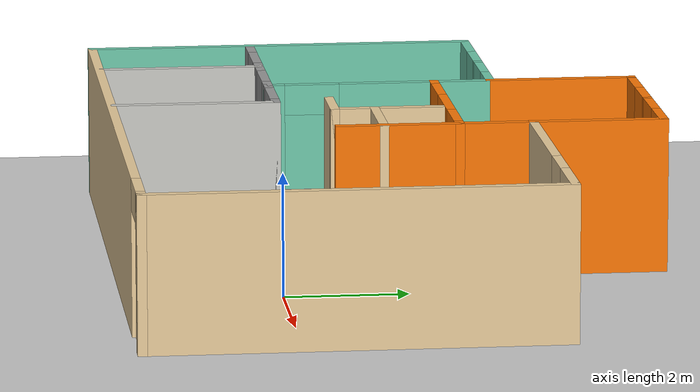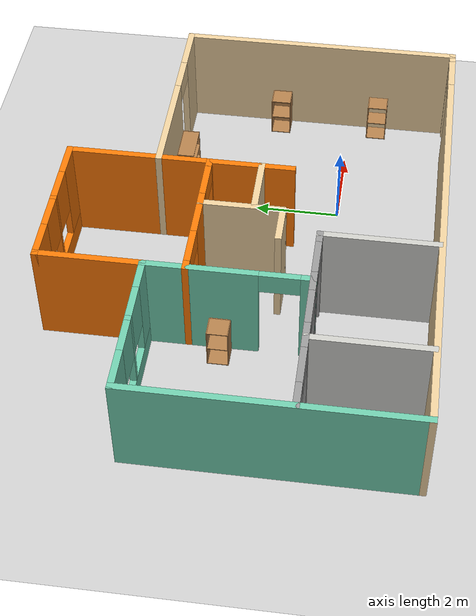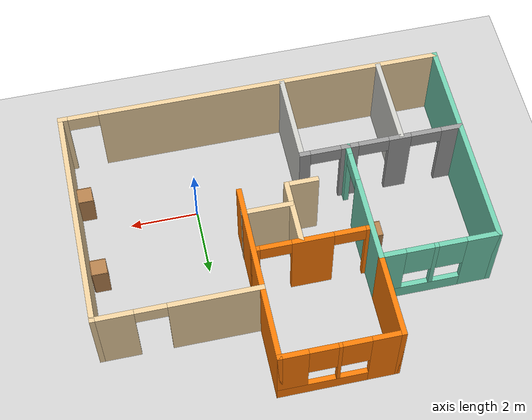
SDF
<sdf version="1.6">
 <world name="default">
  <light name="sun" type="directional">
   <pose>0 0 10 0 -0 0</pose>
   <diffuse>0.8 0.8 0.8 1</diffuse>
   <specular>0.2 0.2 0.2 1</specular>
   <attenuation>
    <range>1000</range>
    <constant>0.9</constant>
    <linear>0.01</linear>
    <quadratic>0.001</quadratic>
   </attenuation>
   <direction>-0.5 0.1 -0.9</direction>
  </light>
  <model name="ground_plane">
   <static>1</static>
   <link name="link">
    <collision name="collision">
     <geometry><plane><normal>0 0 1</normal><size>100 100</size></plane></geometry>
     <surface><friction><ode><mu>100</mu><mu2>50</mu2></ode></friction></surface>
    </collision>
    <visual name="visual">
     <cast_shadows>0</cast_shadows>
     <geometry><plane><normal>0 0 1</normal><size>100 100</size></plane></geometry>
     <material>
      <script><uri>file://media/materials/scripts/gazebo.material</uri><name>Gazebo/Grey</name></script>
     </material>
    </visual>
   </link>
  </model>
  <gravity>0 0 -9.8</gravity>
  <magnetic_field>6e-06 2.3e-05 -4.2e-05</magnetic_field>
  <atmosphere type="adiabatic"/>
  <physics name="default_physics" default="0" type="ode">
   <max_step_size>0.001</max_step_size>
   <real_time_factor>1</real_time_factor>
   <real_time_update_rate>1000</real_time_update_rate>
  </physics>
  <scene><ambient>0.4 0.4 0.4 1</ambient><background>0.7 0.7 0.7 1</background><shadows>1</shadows></scene>
  <spherical_coordinates>
   <surface_model>EARTH_WGS84</surface_model>
   <latitude_deg>0</latitude_deg>
   <longitude_deg>0</longitude_deg>
   <elevation>0</elevation>
   <heading_deg>0</heading_deg>
  </spherical_coordinates>
  <model name="my_old_apt">
   <pose>-2.18324 1.87301 0 0 -0 0</pose>
   <link name="Wall_10">
    <pose>-3.975 2 0 0 -0 0</pose>
    <visual name="Wall_10_Visual_0">
     <pose>-1.25334 0 1.25 0 -0 0</pose>
     <geometry><box><size>0.993317 0.15 2.5</size></box></geometry>
     <material>
      <script><uri>file://media/materials/scripts/gazebo.material</uri><name>Gazebo/Grey</name></script>
      <ambient>0.435294 0.796078 0.67451 1</ambient>
     </material>
     <meta><layer>0</layer></meta>
    </visual>
    <collision name="Wall_10_Collision_0">
     <geometry><box><size>0.993317 0.15 2.5</size></box></geometry>
     <pose>-1.25334 0 1.25 0 -0 0</pose>
    </collision>
    <visual name="Wall_10_Visual_1">
     <pose>0.496658 0 0.25 0 -0 0</pose>
     <geometry><box><size>2.50668 0.15 0.5</size></box></geometry>
     <material>
      <script><uri>file://media/materials/scripts/gazebo.material</uri><name>Gazebo/Grey</name></script>
      <ambient>0.435294 0.796078 0.67451 1</ambient>
     </material>
     <meta><layer>0</layer></meta>
    </visual>
    <collision name="Wall_10_Collision_1">
     <geometry><box><size>2.50668 0.15 0.5</size></box></geometry>
     <pose>0.496658 0 0.25 0 -0 0</pose>
    </collision>
    <visual name="Wall_10_Visual_2">
     <pose>0.105929 0 1.5 0 -0 0</pose>
     <geometry><box><size>0.125224 0.15 2</size></box></geometry>
     <material>
      <script><uri>file://media/materials/scripts/gazebo.material</uri><name>Gazebo/Grey</name></script>
      <ambient>0.435294 0.796078 0.67451 1</ambient>
     </material>
     <meta><layer>0</layer></meta>
    </visual>
    <collision name="Wall_10_Collision_2">
     <geometry><box><size>0.125224 0.15 2</size></box></geometry>
     <pose>0.105929 0 1.5 0 -0 0</pose>
    </collision>
    <visual name="Wall_10_Visual_3">
     <pose>1.35927 0 1.5 0 -0 0</pose>
     <geometry><box><size>0.781459 0.15 2</size></box></geometry>
     <material>
      <script><uri>file://media/materials/scripts/gazebo.material</uri><name>Gazebo/Grey</name></script>
      <ambient>0.435294 0.796078 0.67451 1</ambient>
     </material>
     <meta><layer>0</layer></meta>
    </visual>
    <collision name="Wall_10_Collision_3">
     <geometry><box><size>0.781459 0.15 2</size></box></geometry>
     <pose>1.35927 0 1.5 0 -0 0</pose>
    </collision>
    <visual name="Wall_10_Visual_4">
     <pose>-0.356683 0 1.9 0 -0 0</pose>
     <geometry><box><size>0.8 0.15 1.2</size></box></geometry>
     <material>
      <script><uri>file://media/materials/scripts/gazebo.material</uri><name>Gazebo/Grey</name></script>
      <ambient>0.435294 0.796078 0.67451 1</ambient>
     </material>
     <meta><layer>0</layer></meta>
    </visual>
    <collision name="Wall_10_Collision_4">
     <geometry><box><size>0.8 0.15 1.2</size></box></geometry>
     <pose>-0.356683 0 1.9 0 -0 0</pose>
    </collision>
    <visual name="Wall_10_Visual_5">
     <pose>0.568541 0 1.9 0 -0 0</pose>
     <geometry><box><size>0.8 0.15 1.2</size></box></geometry>
     <material>
      <script><uri>file://media/materials/scripts/gazebo.material</uri><name>Gazebo/Grey</name></script>
      <ambient>0.435294 0.796078 0.67451 1</ambient>
     </material>
     <meta><layer>0</layer></meta>
    </visual>
    <collision name="Wall_10_Collision_5">
     <geometry><box><size>0.8 0.15 1.2</size></box></geometry>
     <pose>0.568541 0 1.9 0 -0 0</pose>
    </collision>
   </link>
   <link name="Wall_11">
    <collision name="Wall_11_Collision">
     <geometry><box><size>2.5 0.15 2.5</size></box></geometry>
     <pose>0 0 1.25 0 -0 0</pose>
    </collision>
    <visual name="Wall_11_Visual">
     <pose>0 0 1.25 0 -0 0</pose>
     <geometry><box><size>2.5 0.15 2.5</size></box></geometry>
     <material>
      <script><uri>file://media/materials/scripts/gazebo.material</uri><name>Gazebo/Grey</name></script>
      <ambient>0.996078 0.47451 0.0196078 1</ambient>
     </material>
     <meta><layer>0</layer></meta>
    </visual>
    <pose>-2.3 3.175 0 0 -0 1.5708</pose>
   </link>
   <link name="Wall_12">
    <pose>-0.625 4.35 0 0 -0 0</pose>
    <visual name="Wall_12_Visual_0">
     <pose>-1.28321 0 1.25 0 -0 0</pose>
     <geometry><box><size>0.933586 0.15 2.5</size></box></geometry>
     <material>
      <script><uri>file://media/materials/scripts/gazebo.material</uri><name>Gazebo/Grey</name></script>
      <ambient>0.996078 0.47451 0.0196078 1</ambient>
     </material>
     <meta><layer>0</layer></meta>
    </visual>
    <collision name="Wall_12_Collision_0">
     <geometry><box><size>0.933586 0.15 2.5</size></box></geometry>
     <pose>-1.28321 0 1.25 0 -0 0</pose>
    </collision>
    <visual name="Wall_12_Visual_1">
     <pose>0.466793 0 0.25 0 -0 0</pose>
     <geometry><box><size>2.56641 0.15 0.5</size></box></geometry>
     <material>
      <script><uri>file://media/materials/scripts/gazebo.material</uri><name>Gazebo/Grey</name></script>
      <ambient>0.996078 0.47451 0.0196078 1</ambient>
     </material>
     <meta><layer>0</layer></meta>
    </visual>
    <collision name="Wall_12_Collision_1">
     <geometry><box><size>2.56641 0.15 0.5</size></box></geometry>
     <pose>0.466793 0 0.25 0 -0 0</pose>
    </collision>
    <visual name="Wall_12_Visual_2">
     <pose>0.034792 0 1.5 0 -0 0</pose>
     <geometry><box><size>0.102412 0.15 2</size></box></geometry>
     <material>
      <script><uri>file://media/materials/scripts/gazebo.material</uri><name>Gazebo/Grey</name></script>
      <ambient>0.996078 0.47451 0.0196078 1</ambient>
     </material>
     <meta><layer>0</layer></meta>
    </visual>
    <collision name="Wall_12_Collision_2">
     <geometry><box><size>0.102412 0.15 2</size></box></geometry>
     <pose>0.034792 0 1.5 0 -0 0</pose>
    </collision>
    <visual name="Wall_12_Visual_3">
     <pose>1.318 0 1.5 0 -0 0</pose>
     <geometry><box><size>0.864002 0.15 2</size></box></geometry>
     <material>
      <script><uri>file://media/materials/scripts/gazebo.material</uri><name>Gazebo/Grey</name></script>
      <ambient>0.996078 0.47451 0.0196078 1</ambient>
     </material>
     <meta><layer>0</layer></meta>
    </visual>
    <collision name="Wall_12_Collision_3">
     <geometry><box><size>0.864002 0.15 2</size></box></geometry>
     <pose>1.318 0 1.5 0 -0 0</pose>
    </collision>
    <visual name="Wall_12_Visual_4">
     <pose>-0.416414 0 1.9 0 -0 0</pose>
     <geometry><box><size>0.8 0.15 1.2</size></box></geometry>
     <material>
      <script><uri>file://media/materials/scripts/gazebo.material</uri><name>Gazebo/Grey</name></script>
      <ambient>0.996078 0.47451 0.0196078 1</ambient>
     </material>
     <meta><layer>0</layer></meta>
    </visual>
    <collision name="Wall_12_Collision_4">
     <geometry><box><size>0.8 0.15 1.2</size></box></geometry>
     <pose>-0.416414 0 1.9 0 -0 0</pose>
    </collision>
    <visual name="Wall_12_Visual_5">
     <pose>0.485998 0 1.9 0 -0 0</pose>
     <geometry><box><size>0.8 0.15 1.2</size></box></geometry>
     <material>
      <script><uri>file://media/materials/scripts/gazebo.material</uri><name>Gazebo/Grey</name></script>
      <ambient>0.996078 0.47451 0.0196078 1</ambient>
     </material>
     <meta><layer>0</layer></meta>
    </visual>
    <collision name="Wall_12_Collision_5">
     <geometry><box><size>0.8 0.15 1.2</size></box></geometry>
     <pose>0.485998 0 1.9 0 -0 0</pose>
    </collision>
   </link>
   <link name="Wall_13">
    <collision name="Wall_13_Collision">
     <geometry><box><size>2.25 0.15 2.5</size></box></geometry>
     <pose>0 0 1.25 0 -0 0</pose>
    </collision>
    <visual name="Wall_13_Visual">
     <pose>0 0 1.25 0 -0 0</pose>
     <geometry><box><size>2.25 0.15 2.5</size></box></geometry>
     <material>
      <script><uri>file://media/materials/scripts/gazebo.material</uri><name>Gazebo/Grey</name></script>
      <ambient>0.996078 0.47451 0.0196078 1</ambient>
     </material>
     <meta><layer>0</layer></meta>
    </visual>
    <pose>1.05 3.3 0 0 0 -1.5708</pose>
   </link>
   <link name="Wall_14">
    <pose>3.35 2.25 0 0 -0 0</pose>
    <visual name="Wall_14_Visual_0">
     <pose>-1.04628 0 1.25 0 -0 0</pose>
     <geometry><box><size>2.65745 0.15 2.5</size></box></geometry>
     <material>
      <script><uri>file://media/materials/scripts/gazebo.material</uri><name>Gazebo/Grey</name></script>
      <ambient>0.921569 0.807843 0.615686 1</ambient>
     </material>
     <meta><layer>0</layer></meta>
    </visual>
    <collision name="Wall_14_Collision_0">
     <geometry><box><size>2.65745 0.15 2.5</size></box></geometry>
     <pose>-1.04628 0 1.25 0 -0 0</pose>
    </collision>
    <visual name="Wall_14_Visual_1">
     <pose>1.77872 0 1.25 0 -0 0</pose>
     <geometry><box><size>1.19255 0.15 2.5</size></box></geometry>
     <material>
      <script><uri>file://media/materials/scripts/gazebo.material</uri><name>Gazebo/Grey</name></script>
      <ambient>0.921569 0.807843 0.615686 1</ambient>
     </material>
     <meta><layer>0</layer></meta>
    </visual>
    <collision name="Wall_14_Collision_1">
     <geometry><box><size>1.19255 0.15 2.5</size></box></geometry>
     <pose>1.77872 0 1.25 0 -0 0</pose>
    </collision>
    <visual name="Wall_14_Visual_2">
     <pose>0.73245 0 2.25 0 -0 0</pose>
     <geometry><box><size>0.9 0.15 0.5</size></box></geometry>
     <material>
      <script><uri>file://media/materials/scripts/gazebo.material</uri><name>Gazebo/Grey</name></script>
      <ambient>0.921569 0.807843 0.615686 1</ambient>
     </material>
     <meta><layer>0</layer></meta>
    </visual>
    <collision name="Wall_14_Collision_2">
     <geometry><box><size>0.9 0.15 0.5</size></box></geometry>
     <pose>0.73245 0 2.25 0 -0 0</pose>
    </collision>
   </link>
   <link name="Wall_15">
    <collision name="Wall_15_Collision">
     <geometry><box><size>6.75 0.15 2.5</size></box></geometry>
     <pose>0 0 1.25 0 -0 0</pose>
    </collision>
    <visual name="Wall_15_Visual">
     <pose>0 0 1.25 0 -0 0</pose>
     <geometry><box><size>6.75 0.15 2.5</size></box></geometry>
     <material>
      <script><uri>file://media/materials/scripts/gazebo.material</uri><name>Gazebo/Grey</name></script>
      <ambient>0.921569 0.807843 0.615686 1</ambient>
     </material>
     <meta><layer>0</layer></meta>
    </visual>
    <pose>5.65 -1.05 0 0 0 -1.5708</pose>
   </link>
   <link name="Wall_18">
    <pose>0 -4.35 0 0 -0 0</pose>
    <visual name="Wall_18_Visual_0">
     <pose>-0.595069 0 1.25 0 -0 0</pose>
     <geometry><box><size>10.2599 0.15 2.5</size></box></geometry>
     <material>
      <script><uri>file://media/materials/scripts/gazebo.material</uri><name>Gazebo/Grey</name></script>
      <ambient>0.921569 0.807843 0.615686 1</ambient>
     </material>
     <meta><layer>0</layer></meta>
    </visual>
    <collision name="Wall_18_Collision_0">
     <geometry><box><size>10.2599 0.15 2.5</size></box></geometry>
     <pose>-0.595069 0 1.25 0 -0 0</pose>
    </collision>
    <visual name="Wall_18_Visual_1">
     <pose>5.57993 0 1.25 0 -0 0</pose>
     <geometry><box><size>0.290139 0.15 2.5</size></box></geometry>
     <material>
      <script><uri>file://media/materials/scripts/gazebo.material</uri><name>Gazebo/Grey</name></script>
      <ambient>0.921569 0.807843 0.615686 1</ambient>
     </material>
     <meta><layer>0</layer></meta>
    </visual>
    <collision name="Wall_18_Collision_1">
     <geometry><box><size>0.290139 0.15 2.5</size></box></geometry>
     <pose>5.57993 0 1.25 0 -0 0</pose>
    </collision>
    <visual name="Wall_18_Visual_2">
     <pose>4.98486 0 2.25 0 -0 0</pose>
     <geometry><box><size>0.9 0.15 0.5</size></box></geometry>
     <material>
      <script><uri>file://media/materials/scripts/gazebo.material</uri><name>Gazebo/Grey</name></script>
      <ambient>0.921569 0.807843 0.615686 1</ambient>
     </material>
     <meta><layer>0</layer></meta>
    </visual>
    <collision name="Wall_18_Collision_2">
     <geometry><box><size>0.9 0.15 0.5</size></box></geometry>
     <pose>4.98486 0 2.25 0 -0 0</pose>
    </collision>
   </link>
   <link name="Wall_20">
    <pose>-3.96576 -1.68179 0 0 -0 0</pose>
    <visual name="Wall_20_Visual_0">
     <pose>-1.42735 0 1.25 0 -0 0</pose>
     <geometry><box><size>0.645291 0.15 2.5</size></box></geometry>
     <material>
      <script><uri>file://media/materials/scripts/gazebo.material</uri><name>Gazebo/Grey</name></script>
      <ambient>1 1 1 1</ambient>
     </material>
     <meta><layer>0</layer></meta>
    </visual>
    <collision name="Wall_20_Collision_0">
     <geometry><box><size>0.645291 0.15 2.5</size></box></geometry>
     <pose>-1.42735 0 1.25 0 -0 0</pose>
    </collision>
    <visual name="Wall_20_Visual_1">
     <pose>0.125342 0 1.25 0 -0 0</pose>
     <geometry><box><size>0.660102 0.15 2.5</size></box></geometry>
     <material>
      <script><uri>file://media/materials/scripts/gazebo.material</uri><name>Gazebo/Grey</name></script>
      <ambient>1 1 1 1</ambient>
     </material>
     <meta><layer>0</layer></meta>
    </visual>
    <collision name="Wall_20_Collision_1">
     <geometry><box><size>0.660102 0.15 2.5</size></box></geometry>
     <pose>0.125342 0 1.25 0 -0 0</pose>
    </collision>
    <visual name="Wall_20_Visual_2">
     <pose>1.5527 0 1.25 0 -0 0</pose>
     <geometry><box><size>0.394608 0.15 2.5</size></box></geometry>
     <material>
      <script><uri>file://media/materials/scripts/gazebo.material</uri><name>Gazebo/Grey</name></script>
      <ambient>1 1 1 1</ambient>
     </material>
     <meta><layer>0</layer></meta>
    </visual>
    <collision name="Wall_20_Collision_2">
     <geometry><box><size>0.394608 0.15 2.5</size></box></geometry>
     <pose>1.5527 0 1.25 0 -0 0</pose>
    </collision>
    <visual name="Wall_20_Visual_3">
     <pose>-0.654709 0 2.25 0 -0 0</pose>
     <geometry><box><size>0.9 0.15 0.5</size></box></geometry>
     <material>
      <script><uri>file://media/materials/scripts/gazebo.material</uri><name>Gazebo/Grey</name></script>
      <ambient>1 1 1 1</ambient>
     </material>
     <meta><layer>0</layer></meta>
    </visual>
    <collision name="Wall_20_Collision_3">
     <geometry><box><size>0.9 0.15 0.5</size></box></geometry>
     <pose>-0.654709 0 2.25 0 -0 0</pose>
    </collision>
    <visual name="Wall_20_Visual_4">
     <pose>0.905392 0 2.25 0 -0 0</pose>
     <geometry><box><size>0.9 0.15 0.5</size></box></geometry>
     <material>
      <script><uri>file://media/materials/scripts/gazebo.material</uri><name>Gazebo/Grey</name></script>
      <ambient>1 1 1 1</ambient>
     </material>
     <meta><layer>0</layer></meta>
    </visual>
    <collision name="Wall_20_Collision_4">
     <geometry><box><size>0.9 0.15 0.5</size></box></geometry>
     <pose>0.905392 0 2.25 0 -0 0</pose>
    </collision>
   </link>
   <link name="Wall_21">
    <pose>-2.29538 0.159105 0 0 -0 1.57331</pose>
    <visual name="Wall_21_Visual_0">
     <pose>-1.74316 0 1.25 0 -0 0</pose>
     <geometry><box><size>0.345478 0.15 2.5</size></box></geometry>
     <material>
      <script><uri>file://media/materials/scripts/gazebo.material</uri><name>Gazebo/Grey</name></script>
      <ambient>0.435294 0.796078 0.67451 1</ambient>
     </material>
     <meta><layer>0</layer></meta>
    </visual>
    <collision name="Wall_21_Collision_0">
     <geometry><box><size>0.345478 0.15 2.5</size></box></geometry>
     <pose>-1.74316 0 1.25 0 -0 0</pose>
    </collision>
    <visual name="Wall_21_Visual_1">
     <pose>0.622739 0 1.25 0 -0 0</pose>
     <geometry><box><size>2.58632 0.15 2.5</size></box></geometry>
     <material>
      <script><uri>file://media/materials/scripts/gazebo.material</uri><name>Gazebo/Grey</name></script>
      <ambient>0.435294 0.796078 0.67451 1</ambient>
     </material>
     <meta><layer>0</layer></meta>
    </visual>
    <collision name="Wall_21_Collision_1">
     <geometry><box><size>2.58632 0.15 2.5</size></box></geometry>
     <pose>0.622739 0 1.25 0 -0 0</pose>
    </collision>
    <visual name="Wall_21_Visual_2">
     <pose>-1.12042 0 2.25 0 -0 0</pose>
     <geometry><box><size>0.9 0.15 0.5</size></box></geometry>
     <material>
      <script><uri>file://media/materials/scripts/gazebo.material</uri><name>Gazebo/Grey</name></script>
      <ambient>0.435294 0.796078 0.67451 1</ambient>
     </material>
     <meta><layer>0</layer></meta>
    </visual>
    <collision name="Wall_21_Collision_2">
     <geometry><box><size>0.9 0.15 0.5</size></box></geometry>
     <pose>-1.12042 0 2.25 0 -0 0</pose>
    </collision>
   </link>
   <link name="Wall_25">
    <collision name="Wall_25_Collision">
     <geometry><box><size>3.25 0.15 2.5</size></box></geometry>
     <pose>0 0 1.25 0 -0 0</pose>
    </collision>
    <visual name="Wall_25_Visual">
     <pose>0 0 1.25 0 -0 0</pose>
     <geometry><box><size>3.25 0.15 2.5</size></box></geometry>
     <material>
      <script><uri>file://media/materials/scripts/gazebo.material</uri><name>Gazebo/Grey</name></script>
      <ambient>0.996078 0.47451 0.0196078 1</ambient>
     </material>
     <meta><layer>0</layer></meta>
    </visual>
    <pose>1.05 0.7 0 0 0 -1.5708</pose>
   </link>
   <link name="Wall_28">
    <pose>-0.624076 1.06727 0 0 -0 0</pose>
    <visual name="Wall_28_Visual_0">
     <pose>-1.62222 0 1.25 0 -0 0</pose>
     <geometry><box><size>0.255563 0.15 2.5</size></box></geometry>
     <material>
      <script><uri>file://media/materials/scripts/gazebo.material</uri><name>Gazebo/Grey</name></script>
      <ambient>0.996078 0.47451 0.0196078 1</ambient>
     </material>
     <meta><layer>0</layer></meta>
    </visual>
    <collision name="Wall_28_Collision_0">
     <geometry><box><size>0.255563 0.15 2.5</size></box></geometry>
     <pose>-1.62222 0 1.25 0 -0 0</pose>
    </collision>
    <visual name="Wall_28_Visual_1">
     <pose>0.003278 0 1.25 0 -0 0</pose>
     <geometry><box><size>1.19543 0.15 2.5</size></box></geometry>
     <material>
      <script><uri>file://media/materials/scripts/gazebo.material</uri><name>Gazebo/Grey</name></script>
      <ambient>0.996078 0.47451 0.0196078 1</ambient>
     </material>
     <meta><layer>0</layer></meta>
    </visual>
    <collision name="Wall_28_Collision_1">
     <geometry><box><size>1.19543 0.15 2.5</size></box></geometry>
     <pose>0.003278 0 1.25 0 -0 0</pose>
    </collision>
    <visual name="Wall_28_Visual_2">
     <pose>1.6255 0 1.25 0 -0 0</pose>
     <geometry><box><size>0.249007 0.15 2.5</size></box></geometry>
     <material>
      <script><uri>file://media/materials/scripts/gazebo.material</uri><name>Gazebo/Grey</name></script>
      <ambient>0.996078 0.47451 0.0196078 1</ambient>
     </material>
     <meta><layer>0</layer></meta>
    </visual>
    <collision name="Wall_28_Collision_2">
     <geometry><box><size>0.249007 0.15 2.5</size></box></geometry>
     <pose>1.6255 0 1.25 0 -0 0</pose>
    </collision>
    <visual name="Wall_28_Visual_3">
     <pose>-1.04444 0 2.25 0 -0 0</pose>
     <geometry><box><size>0.9 0.15 0.5</size></box></geometry>
     <material>
      <script><uri>file://media/materials/scripts/gazebo.material</uri><name>Gazebo/Grey</name></script>
      <ambient>0.996078 0.47451 0.0196078 1</ambient>
     </material>
     <meta><layer>0</layer></meta>
    </visual>
    <collision name="Wall_28_Collision_3">
     <geometry><box><size>0.9 0.15 0.5</size></box></geometry>
     <pose>-1.04444 0 2.25 0 -0 0</pose>
    </collision>
    <visual name="Wall_28_Visual_4">
     <pose>1.05099 0 2.25 0 -0 0</pose>
     <geometry><box><size>0.9 0.15 0.5</size></box></geometry>
     <material>
      <script><uri>file://media/materials/scripts/gazebo.material</uri><name>Gazebo/Grey</name></script>
      <ambient>0.996078 0.47451 0.0196078 1</ambient>
     </material>
     <meta><layer>0</layer></meta>
    </visual>
    <collision name="Wall_28_Collision_4">
     <geometry><box><size>0.9 0.15 0.5</size></box></geometry>
     <pose>1.05099 0 2.25 0 -0 0</pose>
    </collision>
   </link>
   <link name="Wall_30">
    <collision name="Wall_30_Collision">
     <geometry><box><size>2.75 0.15 2.5</size></box></geometry>
     <pose>0 0 1.25 0 -0 0</pose>
    </collision>
    <visual name="Wall_30_Visual">
     <pose>0 0 1.25 0 -0 0</pose>
     <geometry><box><size>2.75 0.15 2.5</size></box></geometry>
     <material>
      <script><uri>file://media/materials/scripts/gazebo.material</uri><name>Gazebo/CeilingTiled</name></script>
      <ambient>1 1 1 1</ambient>
     </material>
     <meta><layer>0</layer></meta>
    </visual>
    <pose>-3.88421 -3.00259 0 0 0 -1.5708</pose>
   </link>
   <link name="Wall_32">
    <pose>-1.61576 -1.68179 0 0 -0 0</pose>
    <visual name="Wall_32_Visual_0">
     <pose>-0.611081 0 1.25 0 -0 0</pose>
     <geometry><box><size>0.277838 0.15 2.5</size></box></geometry>
     <material>
      <script><uri>file://media/materials/scripts/gazebo.material</uri><name>Gazebo/Grey</name></script>
      <ambient>1 1 1 1</ambient>
     </material>
     <meta><layer>0</layer></meta>
    </visual>
    <collision name="Wall_32_Collision_0">
     <geometry><box><size>0.277838 0.15 2.5</size></box></geometry>
     <pose>-0.611081 0 1.25 0 -0 0</pose>
    </collision>
    <visual name="Wall_32_Visual_1">
     <pose>0.588919 0 1.25 0 -0 0</pose>
     <geometry><box><size>0.322162 0.15 2.5</size></box></geometry>
     <material>
      <script><uri>file://media/materials/scripts/gazebo.material</uri><name>Gazebo/Grey</name></script>
      <ambient>1 1 1 1</ambient>
     </material>
     <meta><layer>0</layer></meta>
    </visual>
    <collision name="Wall_32_Collision_1">
     <geometry><box><size>0.322162 0.15 2.5</size></box></geometry>
     <pose>0.588919 0 1.25 0 -0 0</pose>
    </collision>
    <visual name="Wall_32_Visual_2">
     <pose>-0.022162 0 2.25 0 -0 0</pose>
     <geometry><box><size>0.9 0.15 0.5</size></box></geometry>
     <material>
      <script><uri>file://media/materials/scripts/gazebo.material</uri><name>Gazebo/Grey</name></script>
      <ambient>1 1 1 1</ambient>
     </material>
     <meta><layer>0</layer></meta>
    </visual>
    <collision name="Wall_32_Collision_2">
     <geometry><box><size>0.9 0.15 0.5</size></box></geometry>
     <pose>-0.022162 0 2.25 0 -0 0</pose>
    </collision>
   </link>
   <link name="Wall_33">
    <collision name="Wall_33_Collision">
     <geometry><box><size>2.75 0.15 2.5</size></box></geometry>
     <pose>0 0 1.25 0 -0 0</pose>
    </collision>
    <visual name="Wall_33_Visual">
     <pose>0 0 1.25 0 -0 0</pose>
     <geometry><box><size>2.75 0.15 2.5</size></box></geometry>
     <material>
      <script><uri>file://media/materials/scripts/gazebo.material</uri><name>Gazebo/CeilingTiled</name></script>
      <ambient>0.921569 0.807843 0.615686 1</ambient>
     </material>
     <meta><layer>0</layer></meta>
    </visual>
    <pose>-0.940761 -2.98179 0 0 0 -1.5708</pose>
   </link>
   <link name="Wall_36">
    <collision name="Wall_36_Collision">
     <geometry><box><size>1 0.15 2.5</size></box></geometry>
     <pose>0 0 1.25 0 -0 0</pose>
    </collision>
    <visual name="Wall_36_Visual">
     <pose>0 0 1.25 0 -0 0</pose>
     <geometry><box><size>1 0.15 2.5</size></box></geometry>
     <material>
      <script><uri>file://media/materials/scripts/gazebo.material</uri><name>Gazebo/Grey</name></script>
      <ambient>0.921569 0.807843 0.615686 1</ambient>
     </material>
     <meta><layer>0</layer></meta>
    </visual>
    <pose>-0.72221 -0.792592 0 0 -0 0</pose>
   </link>
   <link name="Wall_37">
    <collision name="Wall_37_Collision">
     <geometry><box><size>2 0.15 2.5</size></box></geometry>
     <pose>0 0 1.25 0 -0 0</pose>
    </collision>
    <visual name="Wall_37_Visual">
     <pose>0 0 1.25 0 -0 0</pose>
     <geometry><box><size>2 0.15 2.5</size></box></geometry>
     <material>
      <script><uri>file://media/materials/scripts/gazebo.material</uri><name>Gazebo/Grey</name></script>
      <ambient>0.921569 0.807843 0.615686 1</ambient>
     </material>
     <meta><layer>0</layer></meta>
    </visual>
    <pose>-0.29721 0.132408 0 0 -0 1.5708</pose>
   </link>
   <link name="Wall_41">
    <collision name="Wall_41_Collision">
     <geometry><box><size>1.5 0.15 2.5</size></box></geometry>
     <pose>0 0 1.25 0 -0 0</pose>
    </collision>
    <visual name="Wall_41_Visual">
     <pose>0 0 1.25 0 -0 0</pose>
     <geometry><box><size>1.5 0.15 2.5</size></box></geometry>
     <material>
      <script><uri>file://media/materials/scripts/gazebo.material</uri><name>Gazebo/Grey</name></script>
      <ambient>0.921569 0.807843 0.615686 1</ambient>
     </material>
     <meta><layer>0</layer></meta>
    </visual>
    <pose>0.387357 -0.145149 0 0 -0 3.14159</pose>
   </link>
   <link name="Wall_9">
    <collision name="Wall_9_Collision">
     <geometry><box><size>6.5 0.15 2.5</size></box></geometry>
     <pose>0 0 1.25 0 -0 0</pose>
    </collision>
    <visual name="Wall_9_Visual">
     <pose>0 0 1.25 0 -0 0</pose>
     <geometry><box><size>6.5 0.15 2.5</size></box></geometry>
     <material>
      <script><uri>file://media/materials/scripts/gazebo.material</uri><name>Gazebo/Grey</name></script>
      <ambient>0.435294 0.796078 0.67451 1</ambient>
     </material>
     <meta><layer>0</layer></meta>
    </visual>
    <pose>-5.65 -1.175 0 0 -0 1.5708</pose>
   </link>
   <static>1</static>
  </model>
  <model name="cabinet">
   <static>1</static>
   <link name="cabinet_bottom_plate">
    <inertial>
     <pose>0 0 -1 0 -0 0</pose>
     <inertia><ixx>2.05</ixx><ixy>0</ixy><ixz>0</ixz><iyy>2.05</iyy><iyz>0</iyz><izz>2.05</izz></inertia>
     <mass>25</mass>
    </inertial>
    <collision name="cabinet_bottom_plate_geom">
     <pose>0 0 0.01 0 -0 0</pose>
     <geometry><box><size>0.45 0.45 0.02</size></box></geometry>
    </collision>
    <visual name="cabinet_bottom_plate_geom_visual">
     <pose>0 0 0.01 0 -0 0</pose>
     <geometry><box><size>0.45 0.45 0.02</size></box></geometry>
     <material>
      <script><uri>file://media/materials/scripts/gazebo.material</uri><name>Gazebo/Wood</name></script>
     </material>
    </visual>
    <collision name="cabinet_bottom_plate_geom_cabinet_back_plate">
     <pose>0.235 0 0.51 0 -0 0</pose>
     <geometry><box><size>0.02 0.45 1.02</size></box></geometry>
    </collision>
    <visual name="cabinet_bottom_plate_geom_cabinet_back_plate_visual">
     <pose>0.235 0 0.51 0 -0 0</pose>
     <geometry><box><size>0.02 0.45 1.02</size></box></geometry>
     <material>
      <script><uri>file://media/materials/scripts/gazebo.material</uri><name>Gazebo/Wood</name></script>
     </material>
    </visual>
    <collision name="cabinet_bottom_plate_geom_cabinet_left_plate">
     <pose>0 0.235 0.51 0 -0 0</pose>
     <geometry><box><size>0.45 0.02 1.02</size></box></geometry>
    </collision>
    <visual name="cabinet_bottom_plate_geom_cabinet_left_plate_visual">
     <pose>0 0.235 0.51 0 -0 0</pose>
     <geometry><box><size>0.45 0.02 1.02</size></box></geometry>
     <material>
      <script><uri>file://media/materials/scripts/gazebo.material</uri><name>Gazebo/Wood</name></script>
     </material>
    </visual>
    <collision name="cabinet_bottom_plate_geom_cabinet_middle_plate">
     <pose>0 0 0.51 0 -0 0</pose>
     <geometry><box><size>0.45 0.45 0.02</size></box></geometry>
    </collision>
    <visual name="cabinet_bottom_plate_geom_cabinet_middle_plate_visual">
     <pose>0 0 0.51 0 -0 0</pose>
     <geometry><box><size>0.45 0.45 0.02</size></box></geometry>
     <material>
      <script><uri>file://media/materials/scripts/gazebo.material</uri><name>Gazebo/Wood</name></script>
     </material>
    </visual>
    <collision name="cabinet_bottom_plate_geom_cabinet_right_plate">
     <pose>0 -0.235 0.51 0 -0 0</pose>
     <geometry><box><size>0.45 0.02 1.02</size></box></geometry>
    </collision>
    <visual name="cabinet_bottom_plate_geom_cabinet_right_plate_visual">
     <pose>0 -0.235 0.51 0 -0 0</pose>
     <geometry><box><size>0.45 0.02 1.02</size></box></geometry>
     <material>
      <script><uri>file://media/materials/scripts/gazebo.material</uri><name>Gazebo/Wood</name></script>
     </material>
    </visual>
    <collision name="cabinet_bottom_plate_geom_cabinet_top_plate">
     <pose>0 0 1.01 0 -0 0</pose>
     <geometry><box><size>0.45 0.45 0.02</size></box></geometry>
    </collision>
    <visual name="cabinet_bottom_plate_geom_cabinet_top_plate_visual">
     <pose>0 0 1.01 0 -0 0</pose>
     <geometry><box><size>0.45 0.45 0.02</size></box></geometry>
     <material>
      <script><uri>file://media/materials/scripts/gazebo.material</uri><name>Gazebo/Wood</name></script>
     </material>
    </visual>
   </link>
   <pose>3.11956 1.74589 0 0 -0 0</pose>
  </model>
  <model name="cabinet_0">
   <static>1</static>
   <link name="cabinet_bottom_plate">
    <inertial>
     <pose>0 0 -1 0 -0 0</pose>
     <inertia><ixx>2.05</ixx><ixy>0</ixy><ixz>0</ixz><iyy>2.05</iyy><iyz>0</iyz><izz>2.05</izz></inertia>
     <mass>25</mass>
    </inertial>
    <collision name="cabinet_bottom_plate_geom">
     <pose>0 0 0.01 0 -0 0</pose>
     <geometry><box><size>0.45 0.45 0.02</size></box></geometry>
    </collision>
    <visual name="cabinet_bottom_plate_geom_visual">
     <pose>0 0 0.01 0 -0 0</pose>
     <geometry><box><size>0.45 0.45 0.02</size></box></geometry>
     <material>
      <script><uri>file://media/materials/scripts/gazebo.material</uri><name>Gazebo/Wood</name></script>
     </material>
    </visual>
    <collision name="cabinet_bottom_plate_geom_cabinet_back_plate">
     <pose>0.235 0 0.51 0 -0 0</pose>
     <geometry><box><size>0.02 0.45 1.02</size></box></geometry>
    </collision>
    <visual name="cabinet_bottom_plate_geom_cabinet_back_plate_visual">
     <pose>0.235 0 0.51 0 -0 0</pose>
     <geometry><box><size>0.02 0.45 1.02</size></box></geometry>
     <material>
      <script><uri>file://media/materials/scripts/gazebo.material</uri><name>Gazebo/Wood</name></script>
     </material>
    </visual>
    <collision name="cabinet_bottom_plate_geom_cabinet_left_plate">
     <pose>0 0.235 0.51 0 -0 0</pose>
     <geometry><box><size>0.45 0.02 1.02</size></box></geometry>
    </collision>
    <visual name="cabinet_bottom_plate_geom_cabinet_left_plate_visual">
     <pose>0 0.235 0.51 0 -0 0</pose>
     <geometry><box><size>0.45 0.02 1.02</size></box></geometry>
     <material>
      <script><uri>file://media/materials/scripts/gazebo.material</uri><name>Gazebo/Wood</name></script>
     </material>
    </visual>
    <collision name="cabinet_bottom_plate_geom_cabinet_middle_plate">
     <pose>0 0 0.51 0 -0 0</pose>
     <geometry><box><size>0.45 0.45 0.02</size></box></geometry>
    </collision>
    <visual name="cabinet_bottom_plate_geom_cabinet_middle_plate_visual">
     <pose>0 0 0.51 0 -0 0</pose>
     <geometry><box><size>0.45 0.45 0.02</size></box></geometry>
     <material>
      <script><uri>file://media/materials/scripts/gazebo.material</uri><name>Gazebo/Wood</name></script>
     </material>
    </visual>
    <collision name="cabinet_bottom_plate_geom_cabinet_right_plate">
     <pose>0 -0.235 0.51 0 -0 0</pose>
     <geometry><box><size>0.45 0.02 1.02</size></box></geometry>
    </collision>
    <visual name="cabinet_bottom_plate_geom_cabinet_right_plate_visual">
     <pose>0 -0.235 0.51 0 -0 0</pose>
     <geometry><box><size>0.45 0.02 1.02</size></box></geometry>
     <material>
      <script><uri>file://media/materials/scripts/gazebo.material</uri><name>Gazebo/Wood</name></script>
     </material>
    </visual>
    <collision name="cabinet_bottom_plate_geom_cabinet_top_plate">
     <pose>0 0 1.01 0 -0 0</pose>
     <geometry><box><size>0.45 0.45 0.02</size></box></geometry>
    </collision>
    <visual name="cabinet_bottom_plate_geom_cabinet_top_plate_visual">
     <pose>0 0 1.01 0 -0 0</pose>
     <geometry><box><size>0.45 0.45 0.02</size></box></geometry>
     <material>
      <script><uri>file://media/materials/scripts/gazebo.material</uri><name>Gazebo/Wood</name></script>
     </material>
    </visual>
   </link>
   <pose>-4.81739 2.20711 0 0 -0 0</pose>
  </model>
  <model name="cabinet_1">
   <static>1</static>
   <link name="cabinet_bottom_plate">
    <inertial>
     <pose>0 0 -1 0 -0 0</pose>
     <inertia><ixx>2.05</ixx><ixy>0</ixy><ixz>0</ixz><iyy>2.05</iyy><iyz>0</iyz><izz>2.05</izz></inertia>
     <mass>25</mass>
    </inertial>
    <collision name="cabinet_bottom_plate_geom">
     <pose>0 0 0.01 0 -0 0</pose>
     <geometry><box><size>0.45 0.45 0.02</size></box></geometry>
    </collision>
    <visual name="cabinet_bottom_plate_geom_visual">
     <pose>0 0 0.01 0 -0 0</pose>
     <geometry><box><size>0.45 0.45 0.02</size></box></geometry>
     <material>
      <script><uri>file://media/materials/scripts/gazebo.material</uri><name>Gazebo/Wood</name></script>
     </material>
    </visual>
    <collision name="cabinet_bottom_plate_geom_cabinet_back_plate">
     <pose>0.235 0 0.51 0 -0 0</pose>
     <geometry><box><size>0.02 0.45 1.02</size></box></geometry>
    </collision>
    <visual name="cabinet_bottom_plate_geom_cabinet_back_plate_visual">
     <pose>0.235 0 0.51 0 -0 0</pose>
     <geometry><box><size>0.02 0.45 1.02</size></box></geometry>
     <material>
      <script><uri>file://media/materials/scripts/gazebo.material</uri><name>Gazebo/Wood</name></script>
     </material>
    </visual>
    <collision name="cabinet_bottom_plate_geom_cabinet_left_plate">
     <pose>0 0.235 0.51 0 -0 0</pose>
     <geometry><box><size>0.45 0.02 1.02</size></box></geometry>
    </collision>
    <visual name="cabinet_bottom_plate_geom_cabinet_left_plate_visual">
     <pose>0 0.235 0.51 0 -0 0</pose>
     <geometry><box><size>0.45 0.02 1.02</size></box></geometry>
     <material>
      <script><uri>file://media/materials/scripts/gazebo.material</uri><name>Gazebo/Wood</name></script>
     </material>
    </visual>
    <collision name="cabinet_bottom_plate_geom_cabinet_middle_plate">
     <pose>0 0 0.51 0 -0 0</pose>
     <geometry><box><size>0.45 0.45 0.02</size></box></geometry>
    </collision>
    <visual name="cabinet_bottom_plate_geom_cabinet_middle_plate_visual">
     <pose>0 0 0.51 0 -0 0</pose>
     <geometry><box><size>0.45 0.45 0.02</size></box></geometry>
     <material>
      <script><uri>file://media/materials/scripts/gazebo.material</uri><name>Gazebo/Wood</name></script>
     </material>
    </visual>
    <collision name="cabinet_bottom_plate_geom_cabinet_right_plate">
     <pose>0 -0.235 0.51 0 -0 0</pose>
     <geometry><box><size>0.45 0.02 1.02</size></box></geometry>
    </collision>
    <visual name="cabinet_bottom_plate_geom_cabinet_right_plate_visual">
     <pose>0 -0.235 0.51 0 -0 0</pose>
     <geometry><box><size>0.45 0.02 1.02</size></box></geometry>
     <material>
      <script><uri>file://media/materials/scripts/gazebo.material</uri><name>Gazebo/Wood</name></script>
     </material>
    </visual>
    <collision name="cabinet_bottom_plate_geom_cabinet_top_plate">
     <pose>0 0 1.01 0 -0 0</pose>
     <geometry><box><size>0.45 0.45 0.02</size></box></geometry>
    </collision>
    <visual name="cabinet_bottom_plate_geom_cabinet_top_plate_visual">
     <pose>0 0 1.01 0 -0 0</pose>
     <geometry><box><size>0.45 0.45 0.02</size></box></geometry>
     <material>
      <script><uri>file://media/materials/scripts/gazebo.material</uri><name>Gazebo/Wood</name></script>
     </material>
    </visual>
   </link>
   <pose>3.18692 -0.724685 0 0 -0 0</pose>
  </model>
  <model name="bookshelf">
   <static>1</static>
   <link name="link">
    <inertial><mass>1</mass></inertial>
    <collision name="back">
     <pose>0 0.005 0.6 0 -0 0</pose>
     <geometry><box><size>0.9 0.01 1.2</size></box></geometry>
    </collision>
    <visual name="visual1">
     <pose>0 0.005 0.6 0 -0 0</pose>
     <geometry><box><size>0.9 0.01 1.2</size></box></geometry>
     <material>
      <script><uri>file://media/materials/scripts/gazebo.material</uri><name>Gazebo/Wood</name></script>
     </material>
    </visual>
    <collision name="left_side">
     <pose>0.45 -0.195 0.6 0 -0 0</pose>
     <geometry><box><size>0.02 0.4 1.2</size></box></geometry>
    </collision>
    <visual name="visual2">
     <pose>0.45 -0.195 0.6 0 -0 0</pose>
     <geometry><box><size>0.02 0.4 1.2</size></box></geometry>
     <material>
      <script><uri>file://media/materials/scripts/gazebo.material</uri><name>Gazebo/Wood</name></script>
     </material>
    </visual>
    <collision name="right_side">
     <pose>-0.45 -0.195 0.6 0 -0 0</pose>
     <geometry><box><size>0.02 0.4 1.2</size></box></geometry>
    </collision>
    <visual name="visual3">
     <pose>-0.45 -0.195 0.6 0 -0 0</pose>
     <geometry><box><size>0.02 0.4 1.2</size></box></geometry>
     <material>
      <script><uri>file://media/materials/scripts/gazebo.material</uri><name>Gazebo/Wood</name></script>
     </material>
    </visual>
    <collision name="bottom">
     <pose>0 -0.195 0.03 0 -0 0</pose>
     <geometry><box><size>0.88 0.4 0.06</size></box></geometry>
    </collision>
    <visual name="visual4">
     <pose>0 -0.195 0.03 0 -0 0</pose>
     <geometry><box><size>0.88 0.4 0.06</size></box></geometry>
     <material>
      <script><uri>file://media/materials/scripts/gazebo.material</uri><name>Gazebo/Wood</name></script>
     </material>
    </visual>
    <collision name="top">
     <pose>0 -0.195 1.19 0 -0 0</pose>
     <geometry><box><size>0.88 0.4 0.02</size></box></geometry>
    </collision>
    <visual name="visual5">
     <pose>0 -0.195 1.19 0 -0 0</pose>
     <geometry><box><size>0.88 0.4 0.02</size></box></geometry>
     <material>
      <script><uri>file://media/materials/scripts/gazebo.material</uri><name>Gazebo/Wood</name></script>
     </material>
    </visual>
    <collision name="low_shelf">
     <pose>0 -0.195 0.43 0 -0 0</pose>
     <geometry><box><size>0.88 0.4 0.02</size></box></geometry>
    </collision>
    <visual name="visual6">
     <pose>0 -0.195 0.43 0 -0 0</pose>
     <geometry><box><size>0.88 0.4 0.02</size></box></geometry>
     <material>
      <script><uri>file://media/materials/scripts/gazebo.material</uri><name>Gazebo/Wood</name></script>
     </material>
    </visual>
    <collision name="high_shelf">
     <pose>0 -0.195 0.8 0 -0 0</pose>
     <geometry><box><size>0.88 0.4 0.02</size></box></geometry>
    </collision>
    <visual name="visual7">
     <pose>0 -0.195 0.8 0 -0 0</pose>
     <geometry><box><size>0.88 0.4 0.02</size></box></geometry>
     <material>
      <script><uri>file://media/materials/scripts/gazebo.material</uri><name>Gazebo/Wood</name></script>
     </material>
    </visual>
   </link>
   <pose>0.825957 4.00068 0 0 -0 0</pose>
  </model>
 </world>
</sdf>
